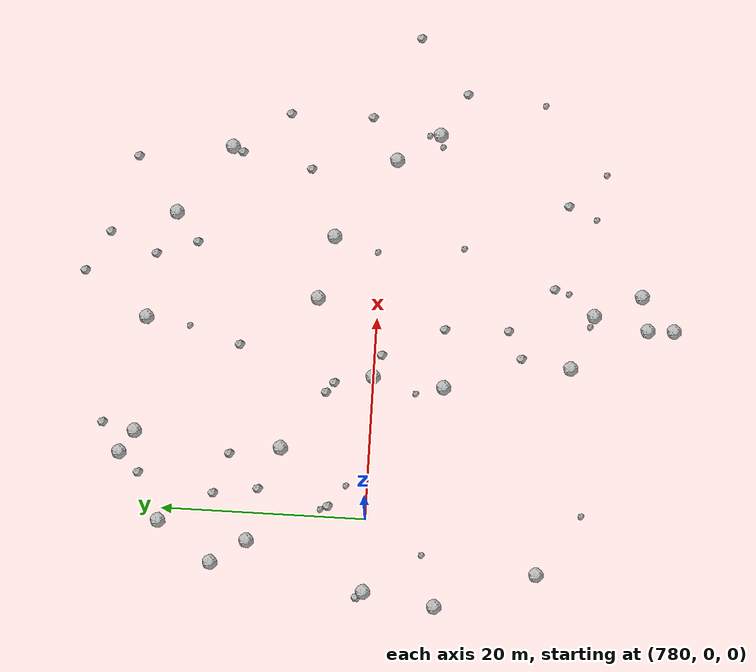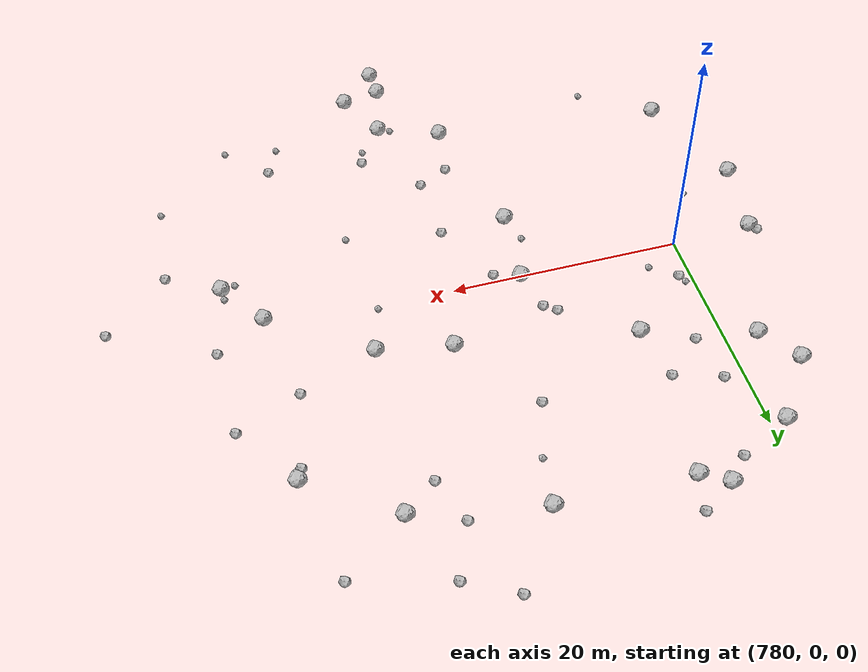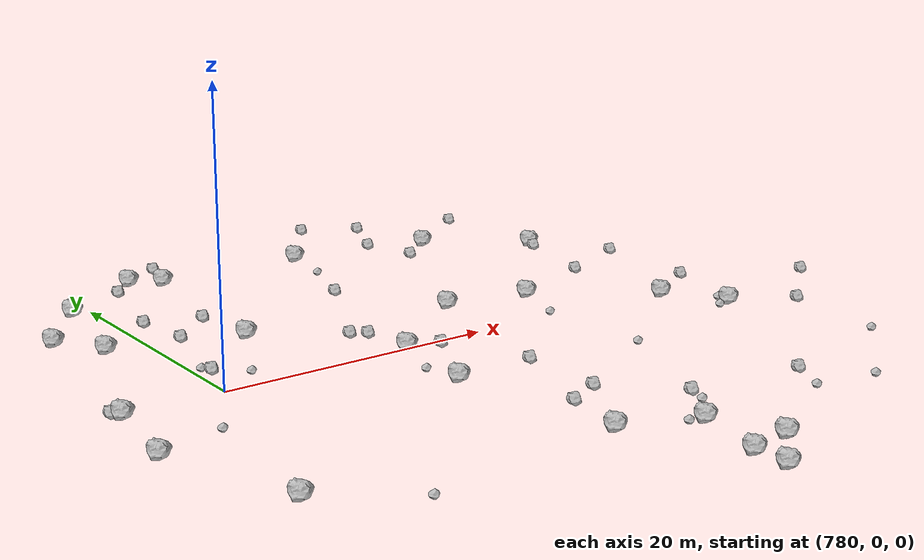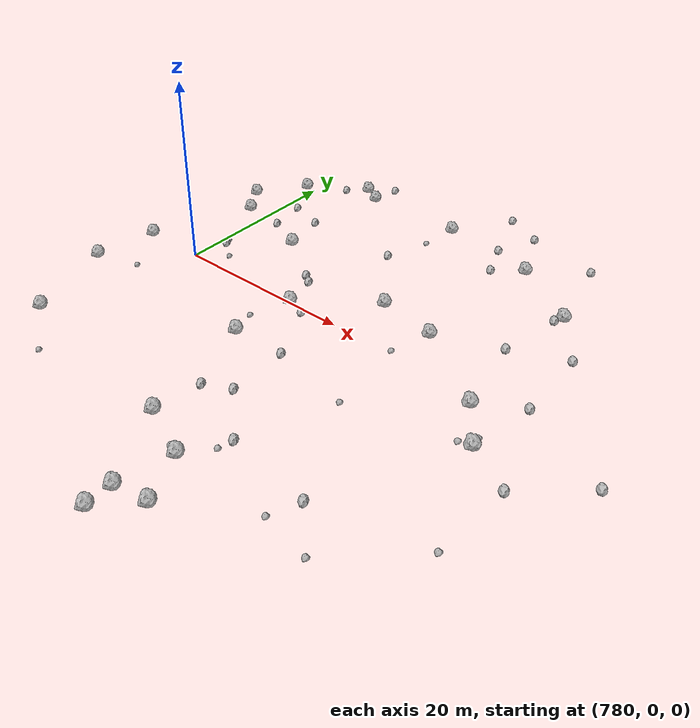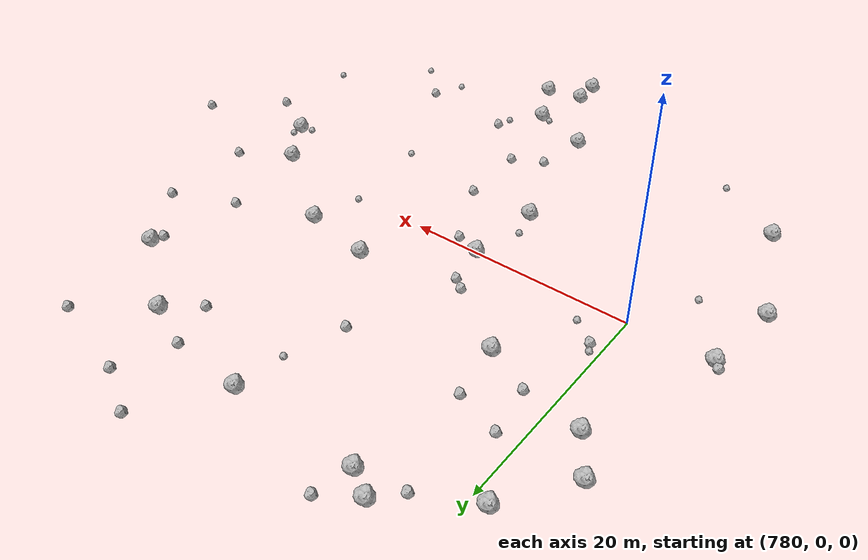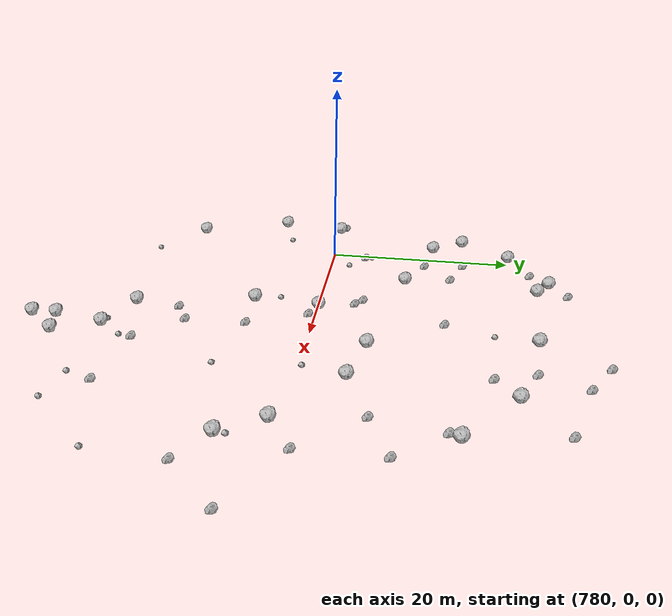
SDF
<sdf version="1.6">
 <world name="default">
  <include><uri>model://sun</uri></include>
  <model name="rock1_20_4">
   <include><uri>model://rock1</uri><pose>774.9930236691725 14.826525297483798 0.5 0 0 0</pose></include>
  </model>
  <model name="rock1_20_5">
   <include><uri>model://rock1</uri><pose>777.29290317575 11.439863844453768 0.5 0 0 0</pose></include>
  </model>
  <model name="rock1_20_6">
   <include><uri>model://rock1</uri><pose>778.7785429401589 20.16433077755348 0.5 0 0 0</pose></include>
  </model>
  <model name="rock1_20_7">
   <include><uri>model://rock1</uri><pose>803.5729805502823 -26.050194692984935 0.5 0 0 0</pose></include>
  </model>
  <model name="rock1_20_8">
   <include><uri>model://rock1</uri><pose>801.3830887770179 -21.40509810571295 0.5 0 0 0</pose></include>
  </model>
  <model name="rock1_20_9">
   <include><uri>model://rock1</uri><pose>801.66846506172 5.945572383176469 0.5 0 0 0</pose></include>
  </model>
  <model name="rock1_20_10">
   <include><uri>model://rock1</uri><pose>787.4306761932785 23.092785802645935 0.5 0 0 0</pose></include>
  </model>
  <model name="rock1_20_11">
   <include><uri>model://rock1</uri><pose>809.5777165039111 20.502290306298733 0.5 0 0 0</pose></include>
  </model>
  <model name="rock1_20_12">
   <include><uri>model://rock1</uri><pose>818.9609407951064 -5.293855293599755 0.5 0 0 0</pose></include>
  </model>
  <model name="rock1_20_13">
   <include><uri>model://rock1</uri><pose>794.1078740156682 0.062953341988365 0.5 0 0 0</pose></include>
  </model>
  <model name="rock1_20_14">
   <include><uri>model://rock1</uri><pose>800.2897405539057 -29.32132439052743 0.5 0 0 0</pose></include>
  </model>
  <model name="rock1_20_15">
   <include><uri>model://rock1</uri><pose>786.5462694591874 8.706810681475119 0.5 0 0 0</pose></include>
  </model>
  <model name="rock1_20_16">
   <include><uri>model://rock1</uri><pose>775.5428072108201 -16.833549607301975 0.5 0 0 0</pose></include>
  </model>
  <model name="rock1_20_17">
   <include><uri>model://rock1</uri><pose>771.9141226779471 -7.108946205535286 0.5 0 0 0</pose></include>
  </model>
  <model name="rock1_20_18">
   <include><uri>model://rock1</uri><pose>816.6042775727021 15.382269608338156 0.5 0 0 0</pose></include>
  </model>
  <model name="rock1_20_19">
   <include><uri>model://rock1</uri><pose>785.2670288641077 24.44393676311848 0.5 0 0 0</pose></include>
  </model>
  <model name="rock1_20_20">
   <include><uri>model://rock1</uri><pose>800.2047679680024 -26.733134066434985 0.5 0 0 0</pose></include>
  </model>
  <model name="rock1_20_21">
   <include><uri>model://rock1</uri><pose>807.9860206626006 4.692155142224337 0.5 0 0 0</pose></include>
  </model>
  <model name="rock1_20_22">
   <include><uri>model://rock1</uri><pose>798.8294509256106 22.744272383632776 0.5 0 0 0</pose></include>
  </model>
  <model name="rock1_20_23">
   <include><uri>model://rock1</uri><pose>793.4030904101396 -6.917631217000878 0.5 0 0 0</pose></include>
  </model>
  <model name="rock1_20_24">
   <include><uri>model://rock1</uri><pose>816.1213633917886 -1.0893710956198142 0.5 0 0 0</pose></include>
  </model>
  <model name="rock1_20_25">
   <include><uri>model://rock1</uri><pose>796.0026773632936 -19.300222917175397 0.5 0 0 0</pose></include>
  </model>
  <model name="rock1_20_26">
   <include><uri>model://rock1</uri><pose>772.9542944459818 -0.16277960013748682 0.5 0 0 0</pose></include>
  </model>
  <model name="rock2_20_0">
   <include><uri>model://rock2</uri><pose>814.7513952512909 7.385624145501929 0.3 0 0 0</pose></include>
  </model>
  <model name="rock2_20_1">
   <include><uri>model://rock2</uri><pose>820.340201451224 9.78569239464472 0.3 0 0 0</pose></include>
  </model>
  <model name="rock2_20_2">
   <include><uri>model://rock2</uri><pose>820.4168052152297 1.5644510192260874 0.3 0 0 0</pose></include>
  </model>
  <model name="rock2_20_3">
   <include><uri>model://rock2</uri><pose>796.5864331809508 13.383255625004786 0.3 0 0 0</pose></include>
  </model>
  <model name="rock2_20_4">
   <include><uri>model://rock2</uri><pose>799.2233935092133 -6.748001173750811 0.3 0 0 0</pose></include>
  </model>
  <model name="rock2_20_5">
   <include><uri>model://rock2</uri><pose>812.4043548019483 -18.4507472516585 0.3 0 0 0</pose></include>
  </model>
  <model name="rock2_20_6">
   <include><uri>model://rock2</uri><pose>823.3400070855723 -7.820534422800417 0.3 0 0 0</pose></include>
  </model>
  <model name="rock2_20_7">
   <include><uri>model://rock2</uri><pose>796.715198271882 -14.43587587714488 0.3 0 0 0</pose></include>
  </model>
  <model name="rock2_20_8">
   <include><uri>model://rock2</uri><pose>783.3602118829567 22.476049340592226 0.3 0 0 0</pose></include>
  </model>
  <model name="rock2_20_9">
   <include><uri>model://rock2</uri><pose>781.085537143539 3.7438096941933736 0.3 0 0 0</pose></include>
  </model>
  <model name="rock2_20_10">
   <include><uri>model://rock2</uri><pose>799.4144253123592 -13.063135138965478 0.3 0 0 0</pose></include>
  </model>
  <model name="rock2_20_11">
   <include><uri>model://rock2</uri><pose>803.8734908264804 -17.39897118607918 0.3 0 0 0</pose></include>
  </model>
  <model name="rock2_20_12">
   <include><uri>model://rock2</uri><pose>805.2962742533479 22.257411735275824 0.3 0 0 0</pose></include>
  </model>
  <model name="rock2_20_13">
   <include><uri>model://rock2</uri><pose>782.4116535700134 10.66930676845923 0.3 0 0 0</pose></include>
  </model>
  <model name="rock2_20_14">
   <include><uri>model://rock2</uri><pose>785.7134831233714 13.678809156082451 0.3 0 0 0</pose></include>
  </model>
  <model name="rock2_20_15">
   <include><uri>model://rock2</uri><pose>788.11587178652 26.300903172748697 0.3 0 0 0</pose></include>
  </model>
  <model name="rock2_20_16">
   <include><uri>model://rock2</uri><pose>828.9292330498315 -2.839780897737594 0.3 0 0 0</pose></include>
  </model>
  <model name="rock2_20_17">
   <include><uri>model://rock2</uri><pose>807.2556627971213 26.922092994927908 0.3 0 0 0</pose></include>
  </model>
  <model name="rock2_20_18">
   <include><uri>model://rock2</uri><pose>772.3871484757442 0.4626687842596411 0.3 0 0 0</pose></include>
  </model>
  <model name="rock2_20_19">
   <include><uri>model://rock2</uri><pose>815.1229032974051 24.712205436912093 0.3 0 0 0</pose></include>
  </model>
  <model name="rock2_20_20">
   <include><uri>model://rock2</uri><pose>816.1271395375012 14.36332954022106 0.3 0 0 0</pose></include>
  </model>
  <model name="rock2_20_21">
   <include><uri>model://rock2</uri><pose>781.7504642206709 15.008280990800785 0.3 0 0 0</pose></include>
  </model>
  <model name="rock2_20_22">
   <include><uri>model://rock2</uri><pose>793.3213268156076 3.8425950524160015 0.3 0 0 0</pose></include>
  </model>
  <model name="rock2_20_23">
   <include><uri>model://rock2</uri><pose>803.1870027482112 29.158398425276957 0.3 0 0 0</pose></include>
  </model>
  <model name="rock2_20_24">
   <include><uri>model://rock2</uri><pose>796.3145380642381 -0.6710299490290694 0.3 0 0 0</pose></include>
  </model>
  <model name="rock2_20_25">
   <include><uri>model://rock2</uri><pose>792.3030334535616 4.604723548882944 0.3 0 0 0</pose></include>
  </model>
  <model name="rock2_20_26">
   <include><uri>model://rock2</uri><pose>806.6891767838629 18.222416128333222 0.3 0 0 0</pose></include>
  </model>
  <model name="rock3_20_0">
   <include><uri>model://rock3</uri><pose>781.4663454727221 -20.983212372173803 0.2 0 0 0</pose></include>
  </model>
  <model name="rock3_20_1">
   <include><uri>model://rock3</uri><pose>818.847995198155 -4.239410252571545 0.2 0 0 0</pose></include>
  </model>
  <model name="rock3_20_2">
   <include><uri>model://rock3</uri><pose>776.8000028332086 -5.652238772370847 0.2 0 0 0</pose></include>
  </model>
  <model name="rock3_20_3">
   <include><uri>model://rock3</uri><pose>780.7082516371669 4.426389292195459 0.2 0 0 0</pose></include>
  </model>
  <model name="rock3_20_4">
   <include><uri>model://rock3</uri><pose>807.4635950991807 -8.26861507050419 0.2 0 0 0</pose></include>
  </model>
  <model name="rock3_20_5">
   <include><uri>model://rock3</uri><pose>815.7895035521624 -22.094697754156456 0.2 0 0 0</pose></include>
  </model>
  <model name="rock3_20_6">
   <include><uri>model://rock3</uri><pose>811.1469095674712 -21.288288949612497 0.2 0 0 0</pose></include>
  </model>
  <model name="rock3_20_7">
   <include><uri>model://rock3</uri><pose>817.7361910843031 -5.609575430183405 0.2 0 0 0</pose></include>
  </model>
  <model name="rock3_20_8">
   <include><uri>model://rock3</uri><pose>806.6339671086271 0.2858488841879918 0.2 0 0 0</pose></include>
  </model>
  <model name="rock3_20_9">
   <include><uri>model://rock3</uri><pose>783.15426895577 2.070856409636903 0.2 0 0 0</pose></include>
  </model>
  <model name="rock3_20_10">
   <include><uri>model://rock3</uri><pose>792.6297520384146 -4.238110236574162 0.2 0 0 0</pose></include>
  </model>
  <model name="rock3_20_11">
   <include><uri>model://rock3</uri><pose>798.1840812684165 18.403635083412837 0.2 0 0 0</pose></include>
  </model>
  <model name="rock3_20_12">
   <include><uri>model://rock3</uri><pose>800.275736188145 -21.081555412266002 0.2 0 0 0</pose></include>
  </model>
  <model name="rock3_20_13">
   <include><uri>model://rock3</uri><pose>803.4536338796121 -18.848991485280806 0.2 0 0 0</pose></include>
  </model>
  <model name="rock3_20_14">
   <include><uri>model://rock3</uri><pose>822.6018875978407 -15.684695767653396 0.2 0 0 0</pose></include>
  </model>
 </world>
</sdf>
